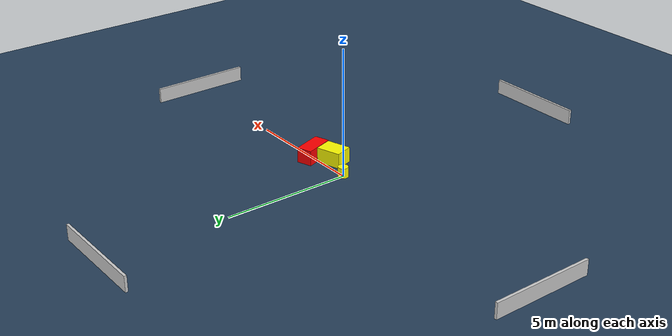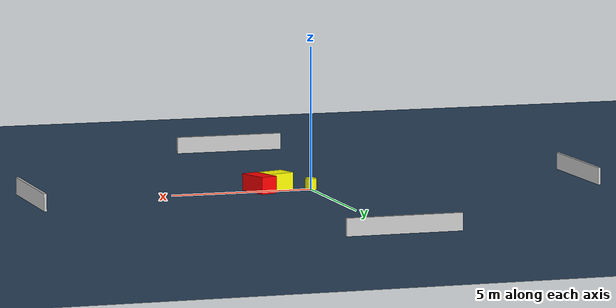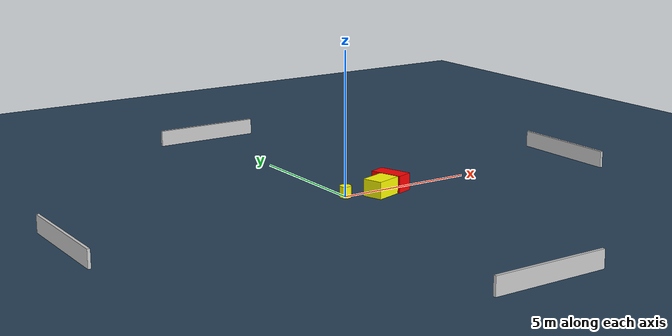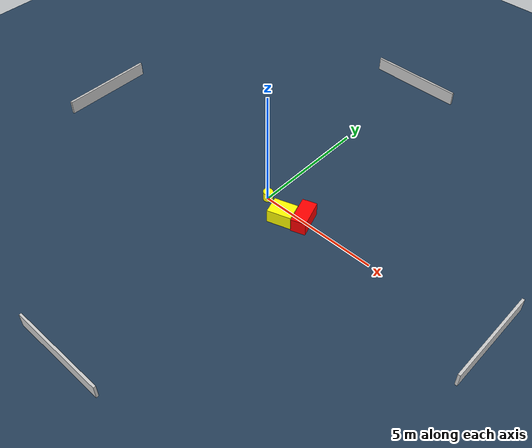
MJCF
<?xml version="1.0" ?>
<mujoco model="generated_environment">
  <option timestep="0.01" integrator="RK4" cone="elliptic"/>
  <default>
    <geom density="1"/>
  </default>
  <asset>
    <texture builtin="gradient" height="3072" name="skybox" rgb1="0.3 0.5 0.7" rgb2="0 0 0" type="skybox" width="512"/>
    <texture builtin="checker" height="300" name="groundplane" rgb1="0.2 0.3 0.4" rgb2="0.1 0.2 0.3" type="2d" width="300"/>
    <material name="groundplane" reflectance="0.2" texrepeat="5 5" texture="groundplane"/>
  </asset>
  <worldbody>
    <light dir="0 0 -1" directional="true" pos="0 0 1.5"/>
    <geom condim="3" friction="0.5 0.005 0.001" material="groundplane" name="floor" pos="0 0 0" size="0 0 0.05" type="plane"/>
    <body name="walls">
      <geom name="wall_1" condim="4" pos="-10.0 0.0 0.3" rgba="0.800000011920929 0.800000011920929 0.800000011920929 1.0" size="0.05 2.0 0.3" type="box"/>
      <geom name="wall_2" condim="4" pos="10.0 0.0 0.3" rgba="0.800000011920929 0.800000011920929 0.800000011920929 1.0" size="0.05 2.0 0.3" type="box"/>
      <geom name="wall_3" condim="4" pos="0.0 -10.0 0.3" rgba="0.800000011920929 0.800000011920929 0.800000011920929 1.0" size="2.0 0.05 0.3" type="box"/>
      <geom name="wall_4" condim="4" pos="0.0 10.0 0.3" rgba="0.800000011920929 0.800000011920929 0.800000011920929 1.0" size="2.0 0.05 0.3" type="box"/>
    </body>
    <body name="robot">
      <joint name="joint_x" type="slide" pos="0 0 0" axis="1 0 0"/>
      <joint name="joint_y" type="slide" pos="0 0 0" axis="0 1 0"/>
      <geom name="robot" type="cylinder" pos="0.0 0.0 0.2" size="0.2 0.2 0.0" mass="5.0" friction="1.0 0.005 0.0001" condim="4" rgba="1.0 1.0 0.0 1.0"/>
    </body>
    <body name="obstacle_1_movable">
      <geom name="obstacle_1_movable" condim="4" pos="1.1527814408462354 -0.428912245009079 0.3" euler="0 0 17.718497116849292" friction="0.0 0.005 0.001" rgba="1.0 1.0 0.0 1.0" size="0.4878718893443376 0.36608220147126413 0.3" type="box" mass="0.1"/>
      <joint type="free"/>
    </body>
    <body name="obstacle_2_static">
      <geom name="obstacle_2_static" condim="4" pos="1.8707675259047436 -0.007058192570623514 0.3" euler="0 0 198.68774221069046" friction="0.0 0.005 0.001" rgba="1.0 0.0 0.0 1.0" size="0.29974882670526215 0.5941313627896695 0.3" type="box"/>
    </body>
  </worldbody>
  <actuator>
    <motor name="actuator_x" joint="joint_x" gear="1" ctrlrange="-1 1"/>
    <motor name="actuator_y" joint="joint_y" gear="1" ctrlrange="-1 1"/>
  </actuator>
</mujoco>
